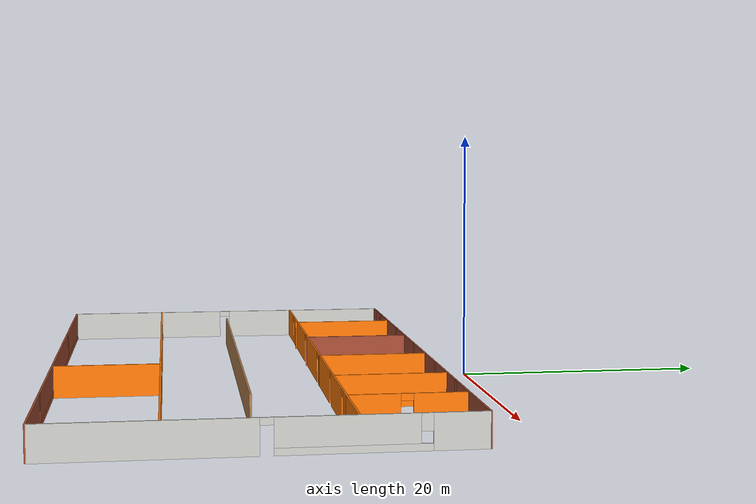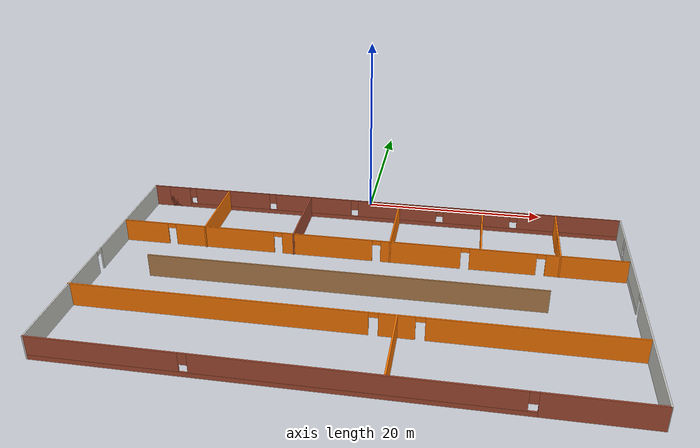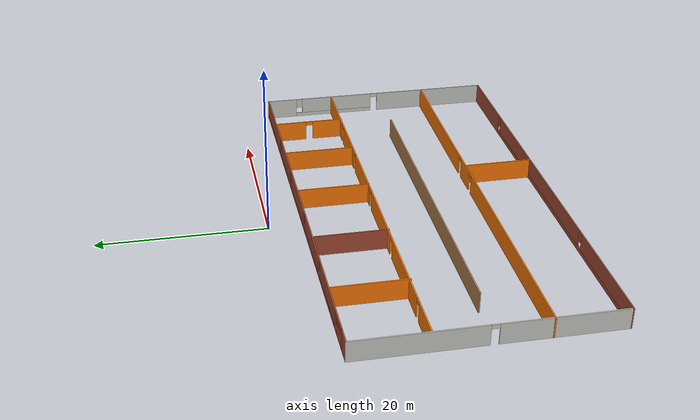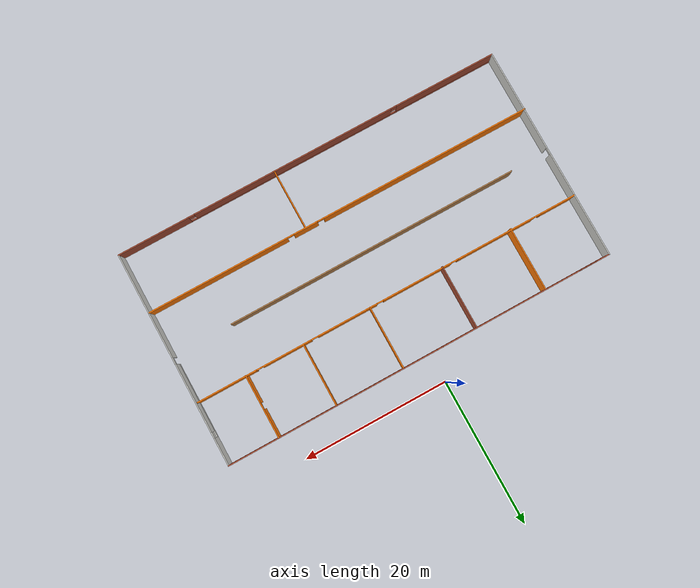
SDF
<?xml version='1.0'?>
<sdf version='1.6'>
  <model name='building'>
    <pose frame=''>1.36561 -18.8206 0 0 -0 0</pose>
    <link name='Wall_63'>
      <pose frame=''>0.95692 14.8001 0 0 -0 0</pose>
      <visual name='Wall_63_Visual_0'>
        <pose frame=''>-24.8797 0 1.25 0 -0 0</pose>
        <geometry>
          <box>
            <size>2.49063 0.15 2.5</size>
          </box>
        </geometry>
        <material>
          <script>
            <uri>file://media/materials/scripts/gazebo.material</uri>
            <name>Gazebo/Bricks</name>
          </script>
          <ambient>1 0.764706 0.305882 1</ambient>
        </material>
        <meta>
          <layer>0</layer>
        </meta>
      </visual>
      <collision name='Wall_63_Collision_0'>
        <geometry>
          <box>
            <size>2.49063 0.15 2.5</size>
          </box>
        </geometry>
        <pose frame=''>-24.8797 0 1.25 0 -0 0</pose>
      </collision>
      <visual name='Wall_63_Visual_1'>
        <pose frame=''>1.24532 0 0.25 0 -0 0</pose>
        <geometry>
          <box>
            <size>49.7594 0.15 0.5</size>
          </box>
        </geometry>
        <material>
          <script>
            <uri>file://media/materials/scripts/gazebo.material</uri>
            <name>Gazebo/Bricks</name>
          </script>
          <ambient>1 0.764706 0.305882 1</ambient>
        </material>
        <meta>
          <layer>0</layer>
        </meta>
      </visual>
      <collision name='Wall_63_Collision_1'>
        <geometry>
          <box>
            <size>49.7594 0.15 0.5</size>
          </box>
        </geometry>
        <pose frame=''>1.24532 0 0.25 0 -0 0</pose>
      </collision>
      <visual name='Wall_63_Visual_2'>
        <pose frame=''>-18.3114 0 1.5 0 -0 0</pose>
        <geometry>
          <box>
            <size>9.04584 0.15 2</size>
          </box>
        </geometry>
        <material>
          <script>
            <uri>file://media/materials/scripts/gazebo.material</uri>
            <name>Gazebo/Bricks</name>
          </script>
          <ambient>1 0.764706 0.305882 1</ambient>
        </material>
        <meta>
          <layer>0</layer>
        </meta>
      </visual>
      <collision name='Wall_63_Collision_2'>
        <geometry>
          <box>
            <size>9.04584 0.15 2</size>
          </box>
        </geometry>
        <pose frame=''>-18.3114 0 1.5 0 -0 0</pose>
      </collision>
      <visual name='Wall_63_Visual_3'>
        <pose frame=''>-8.50629 0 1.5 0 -0 0</pose>
        <geometry>
          <box>
            <size>8.96447 0.15 2</size>
          </box>
        </geometry>
        <material>
          <script>
            <uri>file://media/materials/scripts/gazebo.material</uri>
            <name>Gazebo/Bricks</name>
          </script>
          <ambient>1 0.764706 0.305882 1</ambient>
        </material>
        <meta>
          <layer>0</layer>
        </meta>
      </visual>
      <collision name='Wall_63_Collision_3'>
        <geometry>
          <box>
            <size>8.96447 0.15 2</size>
          </box>
        </geometry>
        <pose frame=''>-8.50629 0 1.5 0 -0 0</pose>
      </collision>
      <visual name='Wall_63_Visual_4'>
        <pose frame=''>1.29887 0 1.5 0 -0 0</pose>
        <geometry>
          <box>
            <size>9.04584 0.15 2</size>
          </box>
        </geometry>
        <material>
          <script>
            <uri>file://media/materials/scripts/gazebo.material</uri>
            <name>Gazebo/Bricks</name>
          </script>
          <ambient>1 0.764706 0.305882 1</ambient>
        </material>
        <meta>
          <layer>0</layer>
        </meta>
      </visual>
      <collision name='Wall_63_Collision_4'>
        <geometry>
          <box>
            <size>9.04584 0.15 2</size>
          </box>
        </geometry>
        <pose frame=''>1.29887 0 1.5 0 -0 0</pose>
      </collision>
      <visual name='Wall_63_Visual_5'>
        <pose frame=''>10.3717 0 1.5 0 -0 0</pose>
        <geometry>
          <box>
            <size>7.4998 0.15 2</size>
          </box>
        </geometry>
        <material>
          <script>
            <uri>file://media/materials/scripts/gazebo.material</uri>
            <name>Gazebo/Bricks</name>
          </script>
          <ambient>1 0.764706 0.305882 1</ambient>
        </material>
        <meta>
          <layer>0</layer>
        </meta>
      </visual>
      <collision name='Wall_63_Collision_5'>
        <geometry>
          <box>
            <size>7.4998 0.15 2</size>
          </box>
        </geometry>
        <pose frame=''>10.3717 0 1.5 0 -0 0</pose>
      </collision>
      <visual name='Wall_63_Visual_6'>
        <pose frame=''>20.5233 0 1.5 0 -0 0</pose>
        <geometry>
          <box>
            <size>11.2034 0.15 2</size>
          </box>
        </geometry>
        <material>
          <script>
            <uri>file://media/materials/scripts/gazebo.material</uri>
            <name>Gazebo/Bricks</name>
          </script>
          <ambient>1 0.764706 0.305882 1</ambient>
        </material>
        <meta>
          <layer>0</layer>
        </meta>
      </visual>
      <collision name='Wall_63_Collision_6'>
        <geometry>
          <box>
            <size>11.2034 0.15 2</size>
          </box>
        </geometry>
        <pose frame=''>20.5233 0 1.5 0 -0 0</pose>
      </collision>
      <visual name='Wall_63_Visual_7'>
        <pose frame=''>-23.2344 0 1.9 0 -0 0</pose>
        <geometry>
          <box>
            <size>0.8 0.15 1.2</size>
          </box>
        </geometry>
        <material>
          <script>
            <uri>file://media/materials/scripts/gazebo.material</uri>
            <name>Gazebo/Bricks</name>
          </script>
          <ambient>1 0.764706 0.305882 1</ambient>
        </material>
        <meta>
          <layer>0</layer>
        </meta>
      </visual>
      <collision name='Wall_63_Collision_7'>
        <geometry>
          <box>
            <size>0.8 0.15 1.2</size>
          </box>
        </geometry>
        <pose frame=''>-23.2344 0 1.9 0 -0 0</pose>
      </collision>
      <visual name='Wall_63_Visual_8'>
        <pose frame=''>-13.3885 0 1.9 0 -0 0</pose>
        <geometry>
          <box>
            <size>0.8 0.15 1.2</size>
          </box>
        </geometry>
        <material>
          <script>
            <uri>file://media/materials/scripts/gazebo.material</uri>
            <name>Gazebo/Bricks</name>
          </script>
          <ambient>1 0.764706 0.305882 1</ambient>
        </material>
        <meta>
          <layer>0</layer>
        </meta>
      </visual>
      <collision name='Wall_63_Collision_8'>
        <geometry>
          <box>
            <size>0.8 0.15 1.2</size>
          </box>
        </geometry>
        <pose frame=''>-13.3885 0 1.9 0 -0 0</pose>
      </collision>
      <visual name='Wall_63_Visual_9'>
        <pose frame=''>-3.62405 0 1.9 0 -0 0</pose>
        <geometry>
          <box>
            <size>0.8 0.15 1.2</size>
          </box>
        </geometry>
        <material>
          <script>
            <uri>file://media/materials/scripts/gazebo.material</uri>
            <name>Gazebo/Bricks</name>
          </script>
          <ambient>1 0.764706 0.305882 1</ambient>
        </material>
        <meta>
          <layer>0</layer>
        </meta>
      </visual>
      <collision name='Wall_63_Collision_9'>
        <geometry>
          <box>
            <size>0.8 0.15 1.2</size>
          </box>
        </geometry>
        <pose frame=''>-3.62405 0 1.9 0 -0 0</pose>
      </collision>
      <visual name='Wall_63_Visual_10'>
        <pose frame=''>6.2218 0 1.9 0 -0 0</pose>
        <geometry>
          <box>
            <size>0.8 0.15 1.2</size>
          </box>
        </geometry>
        <material>
          <script>
            <uri>file://media/materials/scripts/gazebo.material</uri>
            <name>Gazebo/Bricks</name>
          </script>
          <ambient>1 0.764706 0.305882 1</ambient>
        </material>
        <meta>
          <layer>0</layer>
        </meta>
      </visual>
      <collision name='Wall_63_Collision_10'>
        <geometry>
          <box>
            <size>0.8 0.15 1.2</size>
          </box>
        </geometry>
        <pose frame=''>6.2218 0 1.9 0 -0 0</pose>
      </collision>
      <visual name='Wall_63_Visual_11'>
        <pose frame=''>14.5216 0 1.9 0 -0 0</pose>
        <geometry>
          <box>
            <size>0.8 0.15 1.2</size>
          </box>
        </geometry>
        <material>
          <script>
            <uri>file://media/materials/scripts/gazebo.material</uri>
            <name>Gazebo/Bricks</name>
          </script>
          <ambient>1 0.764706 0.305882 1</ambient>
        </material>
        <meta>
          <layer>0</layer>
        </meta>
      </visual>
      <collision name='Wall_63_Collision_11'>
        <geometry>
          <box>
            <size>0.8 0.15 1.2</size>
          </box>
        </geometry>
        <pose frame=''>14.5216 0 1.9 0 -0 0</pose>
      </collision>
    </link>
    <link name='Wall_64'>
      <pose frame=''>26.9601 -0.04667 0 0 0 -1.57397</pose>
      <visual name='Wall_64_Visual_0'>
        <pose frame=''>-12.9387 0 1.25 0 -0 0</pose>
        <geometry>
          <box>
            <size>3.77926 0.15 2.5</size>
          </box>
        </geometry>
        <material>
          <script>
            <uri>file://media/materials/scripts/gazebo.material</uri>
            <name>Gazebo/CeilingTiled</name>
          </script>
          <ambient>0.996078 0.47451 0.0196078 1</ambient>
        </material>
        <meta>
          <layer>0</layer>
        </meta>
      </visual>
      <collision name='Wall_64_Collision_0'>
        <geometry>
          <box>
            <size>3.77926 0.15 2.5</size>
          </box>
        </geometry>
        <pose frame=''>-12.9387 0 1.25 0 -0 0</pose>
      </collision>
      <visual name='Wall_64_Visual_1'>
        <pose frame=''>7.50603 0 1.25 0 -0 0</pose>
        <geometry>
          <box>
            <size>14.6445 0.15 2.5</size>
          </box>
        </geometry>
        <material>
          <script>
            <uri>file://media/materials/scripts/gazebo.material</uri>
            <name>Gazebo/CeilingTiled</name>
          </script>
          <ambient>0.996078 0.47451 0.0196078 1</ambient>
        </material>
        <meta>
          <layer>0</layer>
        </meta>
      </visual>
      <collision name='Wall_64_Collision_1'>
        <geometry>
          <box>
            <size>14.6445 0.15 2.5</size>
          </box>
        </geometry>
        <pose frame=''>7.50603 0 1.25 0 -0 0</pose>
      </collision>
      <visual name='Wall_64_Visual_2'>
        <pose frame=''>-5.88262 0 0.25 0 -0 0</pose>
        <geometry>
          <box>
            <size>10.3328 0.15 0.5</size>
          </box>
        </geometry>
        <material>
          <script>
            <uri>file://media/materials/scripts/gazebo.material</uri>
            <name>Gazebo/CeilingTiled</name>
          </script>
          <ambient>0.996078 0.47451 0.0196078 1</ambient>
        </material>
        <meta>
          <layer>0</layer>
        </meta>
      </visual>
      <collision name='Wall_64_Collision_2'>
        <geometry>
          <box>
            <size>10.3328 0.15 0.5</size>
          </box>
        </geometry>
        <pose frame=''>-5.88262 0 0.25 0 -0 0</pose>
      </collision>
      <visual name='Wall_64_Visual_3'>
        <pose frame=''>-5.48262 0 1.5 0 -0 0</pose>
        <geometry>
          <box>
            <size>9.5328 0.15 2</size>
          </box>
        </geometry>
        <material>
          <script>
            <uri>file://media/materials/scripts/gazebo.material</uri>
            <name>Gazebo/CeilingTiled</name>
          </script>
          <ambient>0.996078 0.47451 0.0196078 1</ambient>
        </material>
        <meta>
          <layer>0</layer>
        </meta>
      </visual>
      <collision name='Wall_64_Collision_3'>
        <geometry>
          <box>
            <size>9.5328 0.15 2</size>
          </box>
        </geometry>
        <pose frame=''>-5.48262 0 1.5 0 -0 0</pose>
      </collision>
      <visual name='Wall_64_Visual_4'>
        <pose frame=''>-10.649 0 1.9 0 -0 0</pose>
        <geometry>
          <box>
            <size>0.8 0.15 1.2</size>
          </box>
        </geometry>
        <material>
          <script>
            <uri>file://media/materials/scripts/gazebo.material</uri>
            <name>Gazebo/CeilingTiled</name>
          </script>
          <ambient>0.996078 0.47451 0.0196078 1</ambient>
        </material>
        <meta>
          <layer>0</layer>
        </meta>
      </visual>
      <collision name='Wall_64_Collision_4'>
        <geometry>
          <box>
            <size>0.8 0.15 1.2</size>
          </box>
        </geometry>
        <pose frame=''>-10.649 0 1.9 0 -0 0</pose>
      </collision>
      <visual name='Wall_64_Visual_5'>
        <pose frame=''>-0.266225 0 2.25 0 -0 0</pose>
        <geometry>
          <box>
            <size>0.9 0.15 0.5</size>
          </box>
        </geometry>
        <material>
          <script>
            <uri>file://media/materials/scripts/gazebo.material</uri>
            <name>Gazebo/CeilingTiled</name>
          </script>
          <ambient>0.996078 0.47451 0.0196078 1</ambient>
        </material>
        <meta>
          <layer>0</layer>
        </meta>
      </visual>
      <collision name='Wall_64_Collision_5'>
        <geometry>
          <box>
            <size>0.9 0.15 0.5</size>
          </box>
        </geometry>
        <pose frame=''>-0.266225 0 2.25 0 -0 0</pose>
      </collision>
    </link>
    <link name='Wall_65'>
      <pose frame=''>-0.011657 -14.7999 0 0 -0 3.14159</pose>
      <visual name='Wall_65_Visual_0'>
        <pose frame=''>-22.0191 0 1.25 0 -0 0</pose>
        <geometry>
          <box>
            <size>9.96181 0.15 2.5</size>
          </box>
        </geometry>
        <material>
          <script>
            <uri>file://media/materials/scripts/gazebo.material</uri>
            <name>Gazebo/Bricks</name>
          </script>
          <ambient>1 0.764706 0.305882 1</ambient>
        </material>
        <meta>
          <layer>0</layer>
        </meta>
      </visual>
      <collision name='Wall_65_Collision_0'>
        <geometry>
          <box>
            <size>9.96181 0.15 2.5</size>
          </box>
        </geometry>
        <pose frame=''>-22.0191 0 1.25 0 -0 0</pose>
      </collision>
      <visual name='Wall_65_Visual_1'>
        <pose frame=''>4.9809 0 0.25 0 -0 0</pose>
        <geometry>
          <box>
            <size>44.0382 0.15 0.5</size>
          </box>
        </geometry>
        <material>
          <script>
            <uri>file://media/materials/scripts/gazebo.material</uri>
            <name>Gazebo/Bricks</name>
          </script>
          <ambient>1 0.764706 0.305882 1</ambient>
        </material>
        <meta>
          <layer>0</layer>
        </meta>
      </visual>
      <collision name='Wall_65_Collision_1'>
        <geometry>
          <box>
            <size>44.0382 0.15 0.5</size>
          </box>
        </geometry>
        <pose frame=''>4.9809 0 0.25 0 -0 0</pose>
      </collision>
      <visual name='Wall_65_Visual_2'>
        <pose frame=''>-2.08709 0 1.5 0 -0 0</pose>
        <geometry>
          <box>
            <size>28.3022 0.15 2</size>
          </box>
        </geometry>
        <material>
          <script>
            <uri>file://media/materials/scripts/gazebo.material</uri>
            <name>Gazebo/Bricks</name>
          </script>
          <ambient>1 0.764706 0.305882 1</ambient>
        </material>
        <meta>
          <layer>0</layer>
        </meta>
      </visual>
      <collision name='Wall_65_Collision_2'>
        <geometry>
          <box>
            <size>28.3022 0.15 2</size>
          </box>
        </geometry>
        <pose frame=''>-2.08709 0 1.5 0 -0 0</pose>
      </collision>
      <visual name='Wall_65_Visual_3'>
        <pose frame=''>19.932 0 1.5 0 -0 0</pose>
        <geometry>
          <box>
            <size>14.136 0.15 2</size>
          </box>
        </geometry>
        <material>
          <script>
            <uri>file://media/materials/scripts/gazebo.material</uri>
            <name>Gazebo/Bricks</name>
          </script>
          <ambient>1 0.764706 0.305882 1</ambient>
        </material>
        <meta>
          <layer>0</layer>
        </meta>
      </visual>
      <collision name='Wall_65_Collision_3'>
        <geometry>
          <box>
            <size>14.136 0.15 2</size>
          </box>
        </geometry>
        <pose frame=''>19.932 0 1.5 0 -0 0</pose>
      </collision>
      <visual name='Wall_65_Visual_4'>
        <pose frame=''>-16.6382 0 1.9 0 -0 0</pose>
        <geometry>
          <box>
            <size>0.8 0.15 1.2</size>
          </box>
        </geometry>
        <material>
          <script>
            <uri>file://media/materials/scripts/gazebo.material</uri>
            <name>Gazebo/Bricks</name>
          </script>
          <ambient>1 0.764706 0.305882 1</ambient>
        </material>
        <meta>
          <layer>0</layer>
        </meta>
      </visual>
      <collision name='Wall_65_Collision_4'>
        <geometry>
          <box>
            <size>0.8 0.15 1.2</size>
          </box>
        </geometry>
        <pose frame=''>-16.6382 0 1.9 0 -0 0</pose>
      </collision>
      <visual name='Wall_65_Visual_5'>
        <pose frame=''>12.464 0 1.9 0 -0 0</pose>
        <geometry>
          <box>
            <size>0.8 0.15 1.2</size>
          </box>
        </geometry>
        <material>
          <script>
            <uri>file://media/materials/scripts/gazebo.material</uri>
            <name>Gazebo/Bricks</name>
          </script>
          <ambient>1 0.764706 0.305882 1</ambient>
        </material>
        <meta>
          <layer>0</layer>
        </meta>
      </visual>
      <collision name='Wall_65_Collision_5'>
        <geometry>
          <box>
            <size>0.8 0.15 1.2</size>
          </box>
        </geometry>
        <pose frame=''>12.464 0 1.9 0 -0 0</pose>
      </collision>
    </link>
    <link name='Wall_66'>
      <pose frame=''>-26.9367 0.000119 0 0 -0 1.5708</pose>
      <visual name='Wall_66_Visual_0'>
        <pose frame=''>-7.83319 0 1.25 0 -0 0</pose>
        <geometry>
          <box>
            <size>14.0836 0.15 2.5</size>
          </box>
        </geometry>
        <material>
          <script>
            <uri>file://media/materials/scripts/gazebo.material</uri>
            <name>Gazebo/CeilingTiled</name>
          </script>
          <ambient>0.996078 0.47451 0.0196078 1</ambient>
        </material>
        <meta>
          <layer>0</layer>
        </meta>
      </visual>
      <collision name='Wall_66_Collision_0'>
        <geometry>
          <box>
            <size>14.0836 0.15 2.5</size>
          </box>
        </geometry>
        <pose frame=''>-7.83319 0 1.25 0 -0 0</pose>
      </collision>
      <visual name='Wall_66_Visual_1'>
        <pose frame=''>7.49181 0 1.25 0 -0 0</pose>
        <geometry>
          <box>
            <size>14.7664 0.15 2.5</size>
          </box>
        </geometry>
        <material>
          <script>
            <uri>file://media/materials/scripts/gazebo.material</uri>
            <name>Gazebo/CeilingTiled</name>
          </script>
          <ambient>0.996078 0.47451 0.0196078 1</ambient>
        </material>
        <meta>
          <layer>0</layer>
        </meta>
      </visual>
      <collision name='Wall_66_Collision_1'>
        <geometry>
          <box>
            <size>14.7664 0.15 2.5</size>
          </box>
        </geometry>
        <pose frame=''>7.49181 0 1.25 0 -0 0</pose>
      </collision>
      <visual name='Wall_66_Visual_2'>
        <pose frame=''>-0.341387 0 2.25 0 -0 0</pose>
        <geometry>
          <box>
            <size>0.9 0.15 0.5</size>
          </box>
        </geometry>
        <material>
          <script>
            <uri>file://media/materials/scripts/gazebo.material</uri>
            <name>Gazebo/CeilingTiled</name>
          </script>
          <ambient>0.996078 0.47451 0.0196078 1</ambient>
        </material>
        <meta>
          <layer>0</layer>
        </meta>
      </visual>
      <collision name='Wall_66_Collision_2'>
        <geometry>
          <box>
            <size>0.9 0.15 0.5</size>
          </box>
        </geometry>
        <pose frame=''>-0.341387 0 2.25 0 -0 0</pose>
      </collision>
    </link>
    <link name='Wall_67'>
      <collision name='Wall_67_Collision'>
        <geometry>
          <box>
            <size>4.5 0.15 2.5</size>
          </box>
        </geometry>
        <pose frame=''>0 0 1.25 0 -0 0</pose>
      </collision>
      <visual name='Wall_67_Visual'>
        <pose frame=''>0 0 1.25 0 -0 0</pose>
        <geometry>
          <box>
            <size>4.5 0.15 2.5</size>
          </box>
        </geometry>
        <material>
          <script>
            <uri>file://media/materials/scripts/gazebo.material</uri>
            <name>Gazebo/Bricks</name>
          </script>
          <ambient>1 0.764706 0.305882 1</ambient>
        </material>
        <meta>
          <layer>0</layer>
        </meta>
      </visual>
      <pose frame=''>-24.7617 14.8001 0 0 -0 0</pose>
    </link>
    <link name='Wall_69'>
      <pose frame=''>-0.045335 6.18308 0 0 -0 0</pose>
      <visual name='Wall_69_Visual_0'>
        <pose frame=''>-24.4109 0 1.25 0 -0 0</pose>
        <geometry>
          <box>
            <size>4.92813 0.15 2.5</size>
          </box>
        </geometry>
        <material>
          <script>
            <uri>file://media/materials/scripts/gazebo.material</uri>
            <name>Gazebo/Grey</name>
          </script>
          <ambient>0.996078 0.47451 0.0196078 1</ambient>
        </material>
        <meta>
          <layer>0</layer>
        </meta>
      </visual>
      <collision name='Wall_69_Collision_0'>
        <geometry>
          <box>
            <size>4.92813 0.15 2.5</size>
          </box>
        </geometry>
        <pose frame=''>-24.4109 0 1.25 0 -0 0</pose>
      </collision>
      <visual name='Wall_69_Visual_1'>
        <pose frame=''>-15.5239 0 1.25 0 -0 0</pose>
        <geometry>
          <box>
            <size>11.046 0.15 2.5</size>
          </box>
        </geometry>
        <material>
          <script>
            <uri>file://media/materials/scripts/gazebo.material</uri>
            <name>Gazebo/Grey</name>
          </script>
          <ambient>0.996078 0.47451 0.0196078 1</ambient>
        </material>
        <meta>
          <layer>0</layer>
        </meta>
      </visual>
      <collision name='Wall_69_Collision_1'>
        <geometry>
          <box>
            <size>11.046 0.15 2.5</size>
          </box>
        </geometry>
        <pose frame=''>-15.5239 0 1.25 0 -0 0</pose>
      </collision>
      <visual name='Wall_69_Visual_2'>
        <pose frame=''>-4.21424 0 1.25 0 -0 0</pose>
        <geometry>
          <box>
            <size>9.77329 0.15 2.5</size>
          </box>
        </geometry>
        <material>
          <script>
            <uri>file://media/materials/scripts/gazebo.material</uri>
            <name>Gazebo/Grey</name>
          </script>
          <ambient>0.996078 0.47451 0.0196078 1</ambient>
        </material>
        <meta>
          <layer>0</layer>
        </meta>
      </visual>
      <collision name='Wall_69_Collision_2'>
        <geometry>
          <box>
            <size>9.77329 0.15 2.5</size>
          </box>
        </geometry>
        <pose frame=''>-4.21424 0 1.25 0 -0 0</pose>
      </collision>
      <visual name='Wall_69_Visual_3'>
        <pose frame=''>5.78359 0 1.25 0 -0 0</pose>
        <geometry>
          <box>
            <size>8.42237 0.15 2.5</size>
          </box>
        </geometry>
        <material>
          <script>
            <uri>file://media/materials/scripts/gazebo.material</uri>
            <name>Gazebo/Grey</name>
          </script>
          <ambient>0.996078 0.47451 0.0196078 1</ambient>
        </material>
        <meta>
          <layer>0</layer>
        </meta>
      </visual>
      <collision name='Wall_69_Collision_3'>
        <geometry>
          <box>
            <size>8.42237 0.15 2.5</size>
          </box>
        </geometry>
        <pose frame=''>5.78359 0 1.25 0 -0 0</pose>
      </collision>
      <visual name='Wall_69_Visual_4'>
        <pose frame=''>14.3144 0 1.25 0 -0 0</pose>
        <geometry>
          <box>
            <size>6.83933 0.15 2.5</size>
          </box>
        </geometry>
        <material>
          <script>
            <uri>file://media/materials/scripts/gazebo.material</uri>
            <name>Gazebo/Grey</name>
          </script>
          <ambient>0.996078 0.47451 0.0196078 1</ambient>
        </material>
        <meta>
          <layer>0</layer>
        </meta>
      </visual>
      <collision name='Wall_69_Collision_4'>
        <geometry>
          <box>
            <size>6.83933 0.15 2.5</size>
          </box>
        </geometry>
        <pose frame=''>14.3144 0 1.25 0 -0 0</pose>
      </collision>
      <visual name='Wall_69_Visual_5'>
        <pose frame=''>22.7546 0 1.25 0 -0 0</pose>
        <geometry>
          <box>
            <size>8.2409 0.15 2.5</size>
          </box>
        </geometry>
        <material>
          <script>
            <uri>file://media/materials/scripts/gazebo.material</uri>
            <name>Gazebo/Grey</name>
          </script>
          <ambient>0.996078 0.47451 0.0196078 1</ambient>
        </material>
        <meta>
          <layer>0</layer>
        </meta>
      </visual>
      <collision name='Wall_69_Collision_5'>
        <geometry>
          <box>
            <size>8.2409 0.15 2.5</size>
          </box>
        </geometry>
        <pose frame=''>22.7546 0 1.25 0 -0 0</pose>
      </collision>
      <visual name='Wall_69_Visual_6'>
        <pose frame=''>-21.4969 0 2.25 0 -0 0</pose>
        <geometry>
          <box>
            <size>0.9 0.15 0.5</size>
          </box>
        </geometry>
        <material>
          <script>
            <uri>file://media/materials/scripts/gazebo.material</uri>
            <name>Gazebo/Grey</name>
          </script>
          <ambient>0.996078 0.47451 0.0196078 1</ambient>
        </material>
        <meta>
          <layer>0</layer>
        </meta>
      </visual>
      <collision name='Wall_69_Collision_6'>
        <geometry>
          <box>
            <size>0.9 0.15 0.5</size>
          </box>
        </geometry>
        <pose frame=''>-21.4969 0 2.25 0 -0 0</pose>
      </collision>
      <visual name='Wall_69_Visual_7'>
        <pose frame=''>-9.55089 0 2.25 0 -0 0</pose>
        <geometry>
          <box>
            <size>0.9 0.15 0.5</size>
          </box>
        </geometry>
        <material>
          <script>
            <uri>file://media/materials/scripts/gazebo.material</uri>
            <name>Gazebo/Grey</name>
          </script>
          <ambient>0.996078 0.47451 0.0196078 1</ambient>
        </material>
        <meta>
          <layer>0</layer>
        </meta>
      </visual>
      <collision name='Wall_69_Collision_7'>
        <geometry>
          <box>
            <size>0.9 0.15 0.5</size>
          </box>
        </geometry>
        <pose frame=''>-9.55089 0 2.25 0 -0 0</pose>
      </collision>
      <visual name='Wall_69_Visual_8'>
        <pose frame=''>1.12241 0 2.25 0 -0 0</pose>
        <geometry>
          <box>
            <size>0.9 0.15 0.5</size>
          </box>
        </geometry>
        <material>
          <script>
            <uri>file://media/materials/scripts/gazebo.material</uri>
            <name>Gazebo/Grey</name>
          </script>
          <ambient>0.996078 0.47451 0.0196078 1</ambient>
        </material>
        <meta>
          <layer>0</layer>
        </meta>
      </visual>
      <collision name='Wall_69_Collision_8'>
        <geometry>
          <box>
            <size>0.9 0.15 0.5</size>
          </box>
        </geometry>
        <pose frame=''>1.12241 0 2.25 0 -0 0</pose>
      </collision>
      <visual name='Wall_69_Visual_9'>
        <pose frame=''>10.4448 0 2.25 0 -0 0</pose>
        <geometry>
          <box>
            <size>0.9 0.15 0.5</size>
          </box>
        </geometry>
        <material>
          <script>
            <uri>file://media/materials/scripts/gazebo.material</uri>
            <name>Gazebo/Grey</name>
          </script>
          <ambient>0.996078 0.47451 0.0196078 1</ambient>
        </material>
        <meta>
          <layer>0</layer>
        </meta>
      </visual>
      <collision name='Wall_69_Collision_9'>
        <geometry>
          <box>
            <size>0.9 0.15 0.5</size>
          </box>
        </geometry>
        <pose frame=''>10.4448 0 2.25 0 -0 0</pose>
      </collision>
      <visual name='Wall_69_Visual_10'>
        <pose frame=''>18.1841 0 2.25 0 -0 0</pose>
        <geometry>
          <box>
            <size>0.9 0.15 0.5</size>
          </box>
        </geometry>
        <material>
          <script>
            <uri>file://media/materials/scripts/gazebo.material</uri>
            <name>Gazebo/Grey</name>
          </script>
          <ambient>0.996078 0.47451 0.0196078 1</ambient>
        </material>
        <meta>
          <layer>0</layer>
        </meta>
      </visual>
      <collision name='Wall_69_Collision_10'>
        <geometry>
          <box>
            <size>0.9 0.15 0.5</size>
          </box>
        </geometry>
        <pose frame=''>18.1841 0 2.25 0 -0 0</pose>
      </collision>
    </link>
    <link name='Wall_71'>
      <pose frame=''>-0.082157 -6.51997 0 0 -0 0</pose>
      <visual name='Wall_71_Visual_0'>
        <pose frame=''>-12.3837 0 1.25 0 -0 0</pose>
        <geometry>
          <box>
            <size>29.2326 0.15 2.5</size>
          </box>
        </geometry>
        <material>
          <script>
            <uri>file://media/materials/scripts/gazebo.material</uri>
            <name>Gazebo/Grey</name>
          </script>
          <ambient>0.996078 0.47451 0.0196078 1</ambient>
        </material>
        <meta>
          <layer>0</layer>
        </meta>
      </visual>
      <collision name='Wall_71_Collision_0'>
        <geometry>
          <box>
            <size>29.2326 0.15 2.5</size>
          </box>
        </geometry>
        <pose frame=''>-12.3837 0 1.25 0 -0 0</pose>
      </collision>
      <visual name='Wall_71_Visual_1'>
        <pose frame=''>4.83487 0 1.25 0 -0 0</pose>
        <geometry>
          <box>
            <size>3.4045 0.15 2.5</size>
          </box>
        </geometry>
        <material>
          <script>
            <uri>file://media/materials/scripts/gazebo.material</uri>
            <name>Gazebo/Grey</name>
          </script>
          <ambient>0.996078 0.47451 0.0196078 1</ambient>
        </material>
        <meta>
          <layer>0</layer>
        </meta>
      </visual>
      <collision name='Wall_71_Collision_1'>
        <geometry>
          <box>
            <size>3.4045 0.15 2.5</size>
          </box>
        </geometry>
        <pose frame=''>4.83487 0 1.25 0 -0 0</pose>
      </collision>
      <visual name='Wall_71_Visual_2'>
        <pose frame=''>17.2186 0 1.25 0 -0 0</pose>
        <geometry>
          <box>
            <size>19.5629 0.15 2.5</size>
          </box>
        </geometry>
        <material>
          <script>
            <uri>file://media/materials/scripts/gazebo.material</uri>
            <name>Gazebo/Grey</name>
          </script>
          <ambient>0.996078 0.47451 0.0196078 1</ambient>
        </material>
        <meta>
          <layer>0</layer>
        </meta>
      </visual>
      <collision name='Wall_71_Collision_2'>
        <geometry>
          <box>
            <size>19.5629 0.15 2.5</size>
          </box>
        </geometry>
        <pose frame=''>17.2186 0 1.25 0 -0 0</pose>
      </collision>
      <visual name='Wall_71_Visual_3'>
        <pose frame=''>2.68262 0 2.25 0 -0 0</pose>
        <geometry>
          <box>
            <size>0.9 0.15 0.5</size>
          </box>
        </geometry>
        <material>
          <script>
            <uri>file://media/materials/scripts/gazebo.material</uri>
            <name>Gazebo/Grey</name>
          </script>
          <ambient>0.996078 0.47451 0.0196078 1</ambient>
        </material>
        <meta>
          <layer>0</layer>
        </meta>
      </visual>
      <collision name='Wall_71_Collision_3'>
        <geometry>
          <box>
            <size>0.9 0.15 0.5</size>
          </box>
        </geometry>
        <pose frame=''>2.68262 0 2.25 0 -0 0</pose>
      </collision>
      <visual name='Wall_71_Visual_4'>
        <pose frame=''>6.98712 0 2.25 0 -0 0</pose>
        <geometry>
          <box>
            <size>0.9 0.15 0.5</size>
          </box>
        </geometry>
        <material>
          <script>
            <uri>file://media/materials/scripts/gazebo.material</uri>
            <name>Gazebo/Grey</name>
          </script>
          <ambient>0.996078 0.47451 0.0196078 1</ambient>
        </material>
        <meta>
          <layer>0</layer>
        </meta>
      </visual>
      <collision name='Wall_71_Collision_4'>
        <geometry>
          <box>
            <size>0.9 0.15 0.5</size>
          </box>
        </geometry>
        <pose frame=''>6.98712 0 2.25 0 -0 0</pose>
      </collision>
    </link>
    <link name='Wall_73'>
      <collision name='Wall_73_Collision'>
        <geometry>
          <box>
            <size>8.75 0.15 2.5</size>
          </box>
        </geometry>
        <pose frame=''>0 0 1.25 0 -0 0</pose>
      </collision>
      <visual name='Wall_73_Visual'>
        <pose frame=''>0 0 1.25 0 -0 0</pose>
        <geometry>
          <box>
            <size>8.75 0.15 2.5</size>
          </box>
        </geometry>
        <material>
          <script>
            <uri>file://media/materials/scripts/gazebo.material</uri>
            <name>Gazebo/Grey</name>
          </script>
          <ambient>0.996078 0.47451 0.0196078 1</ambient>
        </material>
        <meta>
          <layer>0</layer>
        </meta>
      </visual>
      <pose frame=''>-17.7428 10.3617 0 0 -0 1.5708</pose>
    </link>
    <link name='Wall_75'>
      <collision name='Wall_75_Collision'>
        <geometry>
          <box>
            <size>8.75 0.15 2.5</size>
          </box>
        </geometry>
        <pose frame=''>0 0 1.25 0 -0 0</pose>
      </collision>
      <visual name='Wall_75_Visual'>
        <pose frame=''>0 0 1.25 0 -0 0</pose>
        <geometry>
          <box>
            <size>8.75 0.15 2.5</size>
          </box>
        </geometry>
        <material>
          <script>
            <uri>file://media/materials/scripts/gazebo.material</uri>
            <name>Gazebo/Bricks</name>
          </script>
          <ambient>0.996078 0.47451 0.0196078 1</ambient>
        </material>
        <meta>
          <layer>0</layer>
        </meta>
      </visual>
      <pose frame=''>-7.87167 10.3788 0 0 0 -1.5708</pose>
    </link>
    <link name='Wall_77'>
      <collision name='Wall_77_Collision'>
        <geometry>
          <box>
            <size>8.75 0.15 2.5</size>
          </box>
        </geometry>
        <pose frame=''>0 0 1.25 0 -0 0</pose>
      </collision>
      <visual name='Wall_77_Visual'>
        <pose frame=''>0 0 1.25 0 -0 0</pose>
        <geometry>
          <box>
            <size>8.75 0.15 2.5</size>
          </box>
        </geometry>
        <material>
          <script>
            <uri>file://media/materials/scripts/gazebo.material</uri>
            <name>Gazebo/Grey</name>
          </script>
          <ambient>0.996078 0.47451 0.0196078 1</ambient>
        </material>
        <meta>
          <layer>0</layer>
        </meta>
      </visual>
      <pose frame=''>2.52541 10.4597 0 0 0 -1.5708</pose>
    </link>
    <link name='Wall_79'>
      <collision name='Wall_79_Collision'>
        <geometry>
          <box>
            <size>8.5 0.15 2.5</size>
          </box>
        </geometry>
        <pose frame=''>0 0 1.25 0 -0 0</pose>
      </collision>
      <visual name='Wall_79_Visual'>
        <pose frame=''>0 0 1.25 0 -0 0</pose>
        <geometry>
          <box>
            <size>8.5 0.15 2.5</size>
          </box>
        </geometry>
        <material>
          <script>
            <uri>file://media/materials/scripts/gazebo.material</uri>
            <name>Gazebo/Grey</name>
          </script>
          <ambient>0.996078 0.47451 0.0196078 1</ambient>
        </material>
        <meta>
          <layer>0</layer>
        </meta>
      </visual>
      <pose frame=''>11.992 10.5038 0 0 0 -1.5708</pose>
    </link>
    <link name='Wall_81'>
      <pose frame=''>20.0427 10.4597 0 0 0 -1.5708</pose>
      <visual name='Wall_81_Visual_0'>
        <pose frame=''>-2.38459 0 1.25 0 -0 0</pose>
        <geometry>
          <box>
            <size>3.98082 0.15 2.5</size>
          </box>
        </geometry>
        <material>
          <script>
            <uri>file://media/materials/scripts/gazebo.material</uri>
            <name>Gazebo/Grey</name>
          </script>
          <ambient>0.996078 0.47451 0.0196078 1</ambient>
        </material>
        <meta>
          <layer>0</layer>
        </meta>
      </visual>
      <collision name='Wall_81_Collision_0'>
        <geometry>
          <box>
            <size>3.98082 0.15 2.5</size>
          </box>
        </geometry>
        <pose frame=''>-2.38459 0 1.25 0 -0 0</pose>
      </collision>
      <visual name='Wall_81_Visual_1'>
        <pose frame=''>2.44041 0 1.25 0 -0 0</pose>
        <geometry>
          <box>
            <size>3.86918 0.15 2.5</size>
          </box>
        </geometry>
        <material>
          <script>
            <uri>file://media/materials/scripts/gazebo.material</uri>
            <name>Gazebo/Grey</name>
          </script>
          <ambient>0.996078 0.47451 0.0196078 1</ambient>
        </material>
        <meta>
          <layer>0</layer>
        </meta>
      </visual>
      <collision name='Wall_81_Collision_1'>
        <geometry>
          <box>
            <size>3.86918 0.15 2.5</size>
          </box>
        </geometry>
        <pose frame=''>2.44041 0 1.25 0 -0 0</pose>
      </collision>
      <visual name='Wall_81_Visual_2'>
        <pose frame=''>0.055823 0 2.25 0 -0 0</pose>
        <geometry>
          <box>
            <size>0.9 0.15 0.5</size>
          </box>
        </geometry>
        <material>
          <script>
            <uri>file://media/materials/scripts/gazebo.material</uri>
            <name>Gazebo/Grey</name>
          </script>
          <ambient>0.996078 0.47451 0.0196078 1</ambient>
        </material>
        <meta>
          <layer>0</layer>
        </meta>
      </visual>
      <collision name='Wall_81_Collision_2'>
        <geometry>
          <box>
            <size>0.9 0.15 0.5</size>
          </box>
        </geometry>
        <pose frame=''>0.055823 0 2.25 0 -0 0</pose>
      </collision>
    </link>
    <link name='Wall_83'>
      <collision name='Wall_83_Collision'>
        <geometry>
          <box>
            <size>8.25 0.15 2.5</size>
          </box>
        </geometry>
        <pose frame=''>0 0 1.25 0 -0 0</pose>
      </collision>
      <visual name='Wall_83_Visual'>
        <pose frame=''>0 0 1.25 0 -0 0</pose>
        <geometry>
          <box>
            <size>8.25 0.15 2.5</size>
          </box>
        </geometry>
        <material>
          <script>
            <uri>file://media/materials/scripts/gazebo.material</uri>
            <name>Gazebo/Grey</name>
          </script>
          <ambient>0.996078 0.47451 0.0196078 1</ambient>
        </material>
        <meta>
          <layer>0</layer>
        </meta>
      </visual>
      <pose frame=''>4.75047 -10.6509 0 0 0 -1.5708</pose>
    </link>
    <link name='Wall_87'>
      <collision name='Wall_87_Collision'>
        <geometry>
          <box>
            <size>40.25 0.15 2.5</size>
          </box>
        </geometry>
        <pose frame=''>0 0 1.25 0 -0 0</pose>
      </collision>
      <visual name='Wall_87_Visual'>
        <pose frame=''>0 0 1.25 0 -0 0</pose>
        <geometry>
          <box>
            <size>40.25 0.15 2.5</size>
          </box>
        </geometry>
        <material>
          <script>
            <uri>file://media/materials/scripts/gazebo.material</uri>
            <name>Gazebo/Wood</name>
          </script>
          <ambient>1 1 1 1</ambient>
        </material>
        <meta>
          <layer>0</layer>
        </meta>
      </visual>
      <pose frame=''>-1.45804 -0.341268 0 0 -0 0</pose>
    </link>
    <static>1</static>
  </model>
</sdf>
